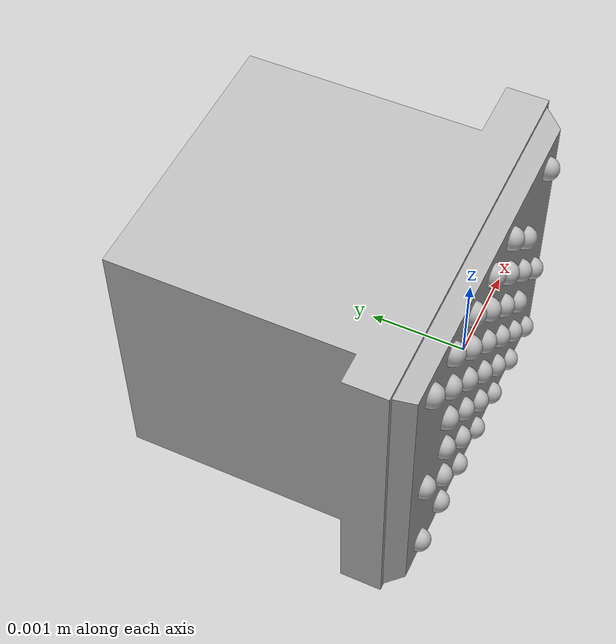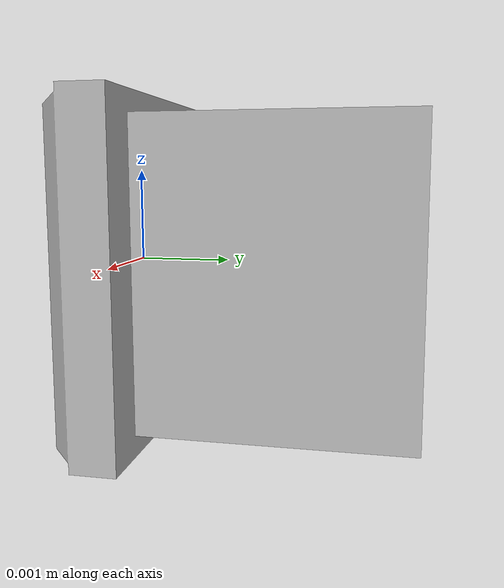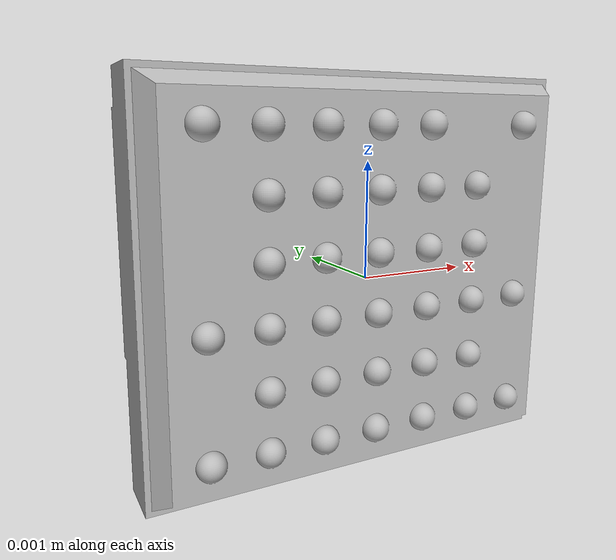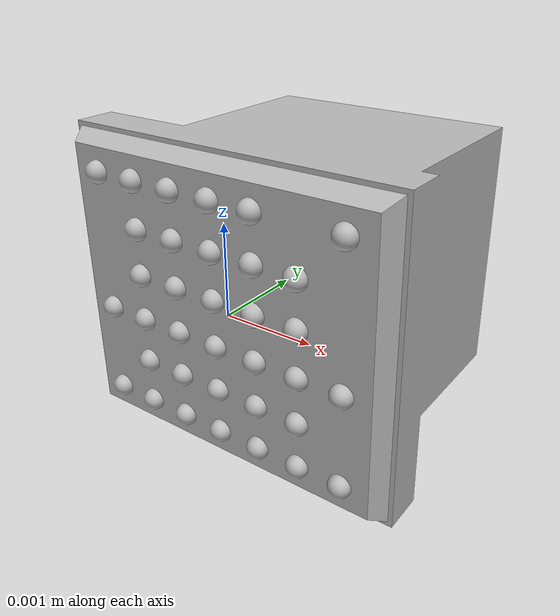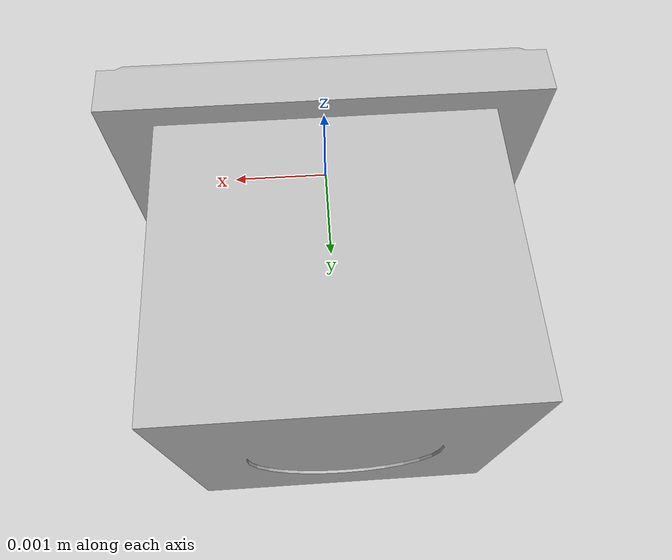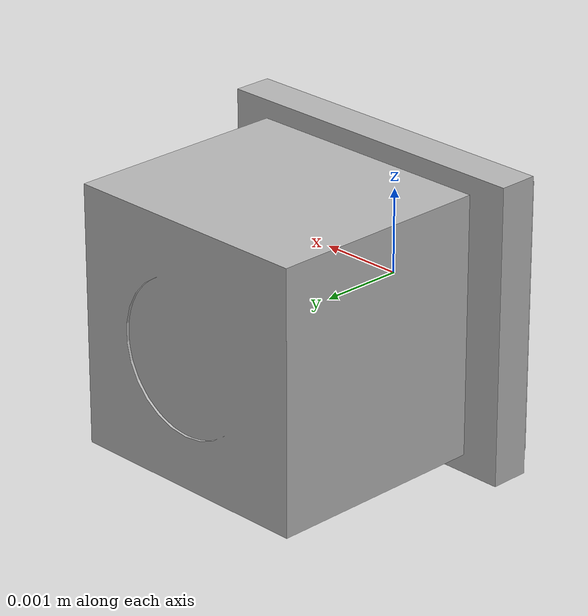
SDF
<?xml version="1.0" ?>
<sdf version="1.6">
  <model name="hyp_model_tri_downcams">
    <link name="link">
      <!-- Link pose at origin -->
      <pose>0 0 0 0 0 0</pose>

      <!-- Lightweight inertial for the mount -->
      <inertial>
        <mass>0.03</mass>
        <inertia>
          <ixx>3e-05</ixx><ixy>0</ixy><ixz>0</ixz>
          <iyy>3e-05</iyy><iyz>0</iyz>
          <izz>3e-05</izz>
        </inertia>
      </inertial>

      <!-- Simple collision just to keep physics stable -->
      <collision name="collision">
        <geometry><cylinder><radius>0.015</radius><length>0.004</length></cylinder></geometry>
      </collision>

      <!-- Optional visual mesh for the mount -->
      <visual name="visual">
        <geometry>
          <mesh>
            <uri>model://hyp_model_tri_downcams/meshes/camera.stl</uri>
            <scale>1 1 1</scale>
          </mesh>
        </geometry>
      </visual>

      <!-- ===== Top camera (downward) ===== -->
      <sensor name="cam_top_down" type="camera">
        <always_on>1</always_on>
        <visualize>1</visualize>
        <update_rate>30</update_rate>
        <pose>0 0.0288675 0 0 1.5708 0</pose>

        <camera>
          <horizontal_fov>1.047</horizontal_fov>
          <image><width>640</width><height>400</height><format>R8G8B8</format></image>
          <clip><near>0.1</near><far>100</far></clip>
          <noise><type>gaussian</type><mean>0.0</mean><stddev>0.005</stddev></noise>
        </camera>

        <plugin name="ros_cam_top" filename="libgazebo_ros_camera.so">
          <ros><namespace>/cameras</namespace></ros>
          <frame_name>cameras/cam_top_down</frame_name>
          <camera_name>cam_top_down</camera_name>
        </plugin>
      </sensor>

      <!-- ===== Bottom-left camera (downward), base left vertex ===== -->
      <sensor name="cam_bl_down" type="camera">
        <always_on>1</always_on>
        <visualize>1</visualize>
        <update_rate>30</update_rate>
        <pose>-0.025 -0.0144338 0 0 1.5708 0</pose>

        <camera>
          <horizontal_fov>1.047</horizontal_fov>
          <image><width>640</width><height>400</height><format>R8G8B8</format></image>
          <clip><near>0.1</near><far>100</far></clip>
          <noise><type>gaussian</type><mean>0.0</mean><stddev>0.005</stddev></noise>
        </camera>

        <plugin name="ros_cam_bl" filename="libgazebo_ros_camera.so">
          <ros><namespace>/cameras</namespace></ros>
          <frame_name>cameras/cam_bl_down</frame_name>
          <camera_name>cam_bl_down</camera_name>
        </plugin>
      </sensor>

      <!-- ===== Bottom-right camera (downward), base right vertex ===== -->
      <sensor name="cam_br_down" type="camera">
        <always_on>1</always_on>
        <visualize>1</visualize>
        <update_rate>30</update_rate>
        <pose>0.025 -0.0144338 0 0 1.5708 0</pose>

        <camera>
          <horizontal_fov>1.047</horizontal_fov>
          <image><width>640</width><height>400</height><format>R8G8B8</format></image>
          <clip><near>0.1</near><far>100</far></clip>
          <noise><type>gaussian</type><mean>0.0</mean><stddev>0.005</stddev></noise>
        </camera>

        <plugin name="ros_cam_br" filename="libgazebo_ros_camera.so">
          <ros><namespace>/cameras</namespace></ros>
          <frame_name>cameras/cam_br_down</frame_name>
          <camera_name>cam_br_down</camera_name>
        </plugin>
      </sensor>

    </link>
  </model>
</sdf>
